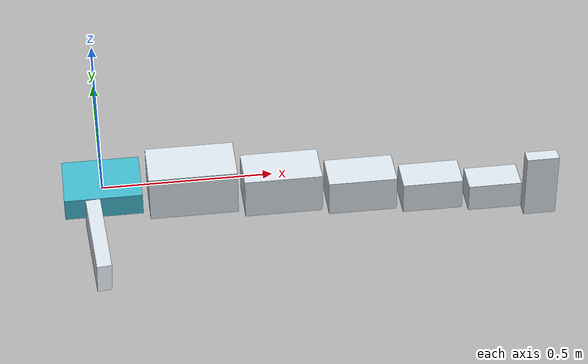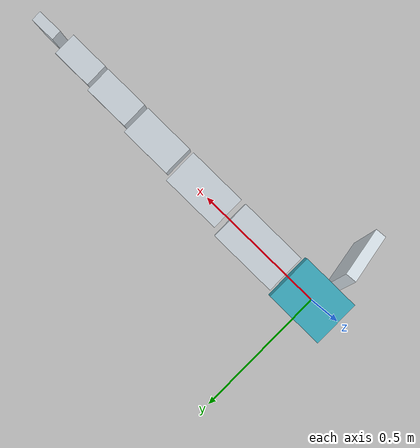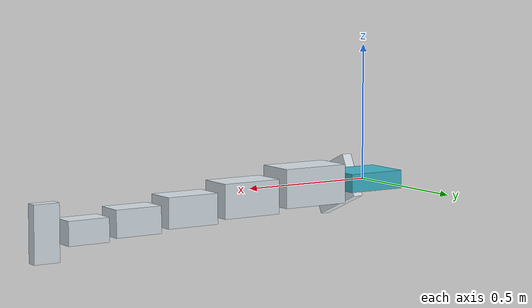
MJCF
<mujoco model="criatura">
  <compiler angle="degree" autolimits="true"/>
  <option timestep="0.002083" gravity="0 0 0" integrator="implicitfast"/>
  <default>
    <geom type="box" density="300.0" rgba="0.85 0.89 0.92 1"/>
    <joint type="hinge"/>
    <motor ctrlrange="-1 1"/>
  </default>
  <worldbody>
    <body name="p0_n0" pos="0.00000 0.00000 0.00000" quat="1.000000 0.000000 0.000000 0.000000">
      <freejoint name="raiz"/>
      <geom name="g_p0_n0" size="0.11296 0.09000 0.03362" rgba="0.25 0.72 0.8 1"/>
      <body name="p1_n1" pos="0.26215 0.00000 0.00000" quat="1.000000 0.000000 0.000000 0.000000">
        <joint name="p1_n1_j0" axis="0.0000 0.0000 1.0000" pos="-0.14919 0 0" range="-60.00 60.00" damping="0.6052"/>
        <geom name="g_p1_n1" size="0.12919 0.07453 0.07117"/>
        <body name="p2_n1" pos="0.26324 -0.01042 -0.02773" quat="1.000000 0.000000 0.000000 0.000000">
          <joint name="p2_n1_j0" axis="0.0000 0.0000 1.0000" pos="-0.13405 0 0" range="-60.00 60.00" damping="0.8269"/>
          <geom name="g_p2_n1" size="0.11405 0.06580 0.06283"/>
          <body name="p3_n1" pos="0.23474 -0.00920 -0.02448" quat="1.000000 0.000000 0.000000 0.000000">
            <joint name="p3_n1_j0" axis="0.0000 0.0000 1.0000" pos="-0.12069 0 0" range="-60.00 60.00" damping="0.6445"/>
            <geom name="g_p3_n1" size="0.10069 0.05809 0.05547"/>
            <body name="p4_n1" pos="0.20958 -0.00812 -0.02161" quat="1.000000 0.000000 0.000000 0.000000">
              <joint name="p4_n1_j0" axis="0.0000 0.0000 1.0000" pos="-0.10889 0 0" range="-60.00 60.00" damping="0.5023"/>
              <geom name="g_p4_n1" size="0.08889 0.05128 0.04897"/>
              <body name="p5_n1" pos="0.18737 -0.00717 -0.01908" quat="1.000000 0.000000 0.000000 0.000000">
                <joint name="p5_n1_j0" axis="0.0000 0.0000 1.0000" pos="-0.09848 0 0" range="-60.00 60.00" damping="0.3915"/>
                <geom name="g_p5_n1" size="0.07848 0.04527 0.04323"/>
                <body name="p6_n3" pos="0.14677 0.00000 0.00284" quat="1.000000 0.000000 0.000000 0.000000">
                  <joint name="p6_n3_j0" axis="0.0000 0.0000 1.0000" pos="-0.06829 0 0" range="-62.73 62.73" damping="0.3915"/>
                  <geom name="g_p6_n3" size="0.04829 0.02000 0.10262"/>
                </body>
              </body>
            </body>
          </body>
        </body>
      </body>
      <body name="p7_n2" pos="-0.02398 -0.20318 -0.04554" quat="0.614901 -0.401772 0.576630 -0.357734">
        <joint name="p7_n2_j0" axis="0.0000 -1.0000 0.0000" pos="-0.12530 0 0" range="-54.73 54.73" damping="0.3548"/>
        <joint name="p7_n2_j1" axis="0.0000 0.0000 1.0000" pos="-0.12530 0 0" range="-54.73 54.73" damping="0.3548"/>
        <geom name="g_p7_n2" size="0.10530 0.08424 0.02106"/>
      </body>
    </body>
  </worldbody>
  <actuator>
    <motor name="m_p1_n1_j0" joint="p1_n1_j0" gear="12.1038"/>
    <motor name="m_p2_n1_j0" joint="p2_n1_j0" gear="16.5373"/>
    <motor name="m_p3_n1_j0" joint="p3_n1_j0" gear="12.8890"/>
    <motor name="m_p4_n1_j0" joint="p4_n1_j0" gear="10.0456"/>
    <motor name="m_p5_n1_j0" joint="p5_n1_j0" gear="7.8294"/>
    <motor name="m_p6_n3_j0" joint="p6_n3_j0" gear="7.8294"/>
    <motor name="m_p7_n2_j0" joint="p7_n2_j0" gear="-7.0958"/>
    <motor name="m_p7_n2_j1" joint="p7_n2_j1" gear="-7.0958"/>
  </actuator>
</mujoco>
